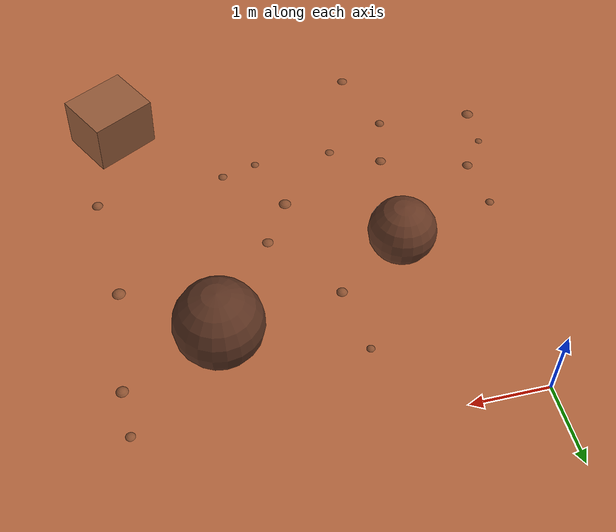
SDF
<sdf version="1.8">
 <world name="rover_world">
  <model name="ground_plane">
   <static>true</static>
   <link name="link">
    <collision name="collision">
     <geometry><plane><normal>0 0 1</normal><size>60 60</size></plane></geometry>
    </collision>
    <visual name="visual">
     <geometry><plane><normal>0 0 1</normal><size>60 60</size></plane></geometry>
     <material><ambient>0.71 0.40 0.24 1</ambient><diffuse>0.71 0.40 0.24 1</diffuse></material>
    </visual>
   </link>
  </model>
  <model name="rock_b10">
   <static>true</static>
   <pose>4.448 -5.287 0.359 -0.009 0.027 2.079</pose>
   <link name="link">
    <collision name="collision"><geometry><box><size>0.759 0.896 0.713</size></box></geometry></collision>
    <visual name="visual">
     <geometry><box><size>0.759 0.896 0.713</size></box></geometry>
     <material><ambient>0.58 0.35 0.22 1</ambient><diffuse>0.58 0.35 0.22 1</diffuse></material>
    </visual>
   </link>
  </model>
  <model name="rock_s15">
   <static>true</static>
   <pose>3.613 -1.589 0.310 0 0 0</pose>
   <link name="link">
    <collision name="collision"><geometry><sphere><radius>0.564</radius></sphere></geometry></collision>
    <visual name="visual">
     <geometry><sphere><radius>0.564</radius></sphere></geometry>
     <material><ambient>0.36 0.20 0.13 1</ambient><diffuse>0.36 0.20 0.13 1</diffuse></material>
    </visual>
   </link>
  </model>
  <model name="rock_s20">
   <static>true</static>
   <pose>1.038 -2.506 0.247 0 0 0</pose>
   <link name="link">
    <collision name="collision"><geometry><sphere><radius>0.448</radius></sphere></geometry></collision>
    <visual name="visual">
     <geometry><sphere><radius>0.448</radius></sphere></geometry>
     <material><ambient>0.40 0.22 0.14 1</ambient><diffuse>0.40 0.22 0.14 1</diffuse></material>
    </visual>
   </link>
  </model>
  <model name="bump_12">
   <static>true</static>
   <pose>2.354 -3.523 -0.063 0 0 0</pose>
   <link name="link">
    <collision name="collision"><geometry><sphere><radius>0.099</radius></sphere></geometry></collision>
    <visual name="visual">
     <geometry><sphere><radius>0.099</radius></sphere></geometry>
     <material><ambient>0.55 0.32 0.19 1</ambient><diffuse>0.55 0.32 0.19 1</diffuse></material>
    </visual>
   </link>
  </model>
  <model name="bump_26">
   <static>true</static>
   <pose>1.996 -1.910 -0.047 0 0 0</pose>
   <link name="link">
    <collision name="collision"><geometry><sphere><radius>0.081</radius></sphere></geometry></collision>
    <visual name="visual">
     <geometry><sphere><radius>0.081</radius></sphere></geometry>
     <material><ambient>0.55 0.32 0.19 1</ambient><diffuse>0.55 0.32 0.19 1</diffuse></material>
    </visual>
   </link>
  </model>
  <model name="bump_33">
   <static>true</static>
   <pose>0.659 -4.728 -0.031 0 0 0</pose>
   <link name="link">
    <collision name="collision"><geometry><sphere><radius>0.068</radius></sphere></geometry></collision>
    <visual name="visual">
     <geometry><sphere><radius>0.068</radius></sphere></geometry>
     <material><ambient>0.55 0.32 0.19 1</ambient><diffuse>0.55 0.32 0.19 1</diffuse></material>
    </visual>
   </link>
  </model>
  <model name="bump_47">
   <static>true</static>
   <pose>4.821 -4.077 -0.042 0 0 0</pose>
   <link name="link">
    <collision name="collision"><geometry><sphere><radius>0.081</radius></sphere></geometry></collision>
    <visual name="visual">
     <geometry><sphere><radius>0.081</radius></sphere></geometry>
     <material><ambient>0.55 0.32 0.19 1</ambient><diffuse>0.55 0.32 0.19 1</diffuse></material>
    </visual>
   </link>
  </model>
  <model name="bump_57">
   <static>true</static>
   <pose>1.517 -4.328 -0.078 0 0 0</pose>
   <link name="link">
    <collision name="collision"><geometry><sphere><radius>0.094</radius></sphere></geometry></collision>
    <visual name="visual">
     <geometry><sphere><radius>0.094</radius></sphere></geometry>
     <material><ambient>0.55 0.32 0.19 1</ambient><diffuse>0.55 0.32 0.19 1</diffuse></material>
    </visual>
   </link>
  </model>
  <model name="bump_84">
   <static>true</static>
   <pose>2.726 -2.916 -0.082 0 0 0</pose>
   <link name="link">
    <collision name="collision"><geometry><sphere><radius>0.105</radius></sphere></geometry></collision>
    <visual name="visual">
     <geometry><sphere><radius>0.105</radius></sphere></geometry>
     <material><ambient>0.55 0.32 0.19 1</ambient><diffuse>0.55 0.32 0.19 1</diffuse></material>
    </visual>
   </link>
  </model>
  <model name="bump_90">
   <static>true</static>
   <pose>1.884 -1.012 -0.032 0 0 0</pose>
   <link name="link">
    <collision name="collision"><geometry><sphere><radius>0.058</radius></sphere></geometry></collision>
    <visual name="visual">
     <geometry><sphere><radius>0.058</radius></sphere></geometry>
     <material><ambient>0.55 0.32 0.19 1</ambient><diffuse>0.55 0.32 0.19 1</diffuse></material>
    </visual>
   </link>
  </model>
  <model name="bump_93">
   <static>true</static>
   <pose>0.944 -5.739 -0.065 0 0 0</pose>
   <link name="link">
    <collision name="collision"><geometry><sphere><radius>0.093</radius></sphere></geometry></collision>
    <visual name="visual">
     <geometry><sphere><radius>0.093</radius></sphere></geometry>
     <material><ambient>0.55 0.32 0.19 1</ambient><diffuse>0.55 0.32 0.19 1</diffuse></material>
    </visual>
   </link>
  </model>
  <model name="bump_107">
   <static>true</static>
   <pose>-0.614 -4.052 -0.049 0 0 0</pose>
   <link name="link">
    <collision name="collision"><geometry><sphere><radius>0.065</radius></sphere></geometry></collision>
    <visual name="visual">
     <geometry><sphere><radius>0.065</radius></sphere></geometry>
     <material><ambient>0.55 0.32 0.19 1</ambient><diffuse>0.55 0.32 0.19 1</diffuse></material>
    </visual>
   </link>
  </model>
  <model name="bump_157">
   <static>true</static>
   <pose>0.865 -3.994 -0.048 0 0 0</pose>
   <link name="link">
    <collision name="collision"><geometry><sphere><radius>0.083</radius></sphere></geometry></collision>
    <visual name="visual">
     <geometry><sphere><radius>0.083</radius></sphere></geometry>
     <material><ambient>0.55 0.32 0.19 1</ambient><diffuse>0.55 0.32 0.19 1</diffuse></material>
    </visual>
   </link>
  </model>
  <model name="bump_164">
   <static>true</static>
   <pose>2.594 -4.338 -0.043 0 0 0</pose>
   <link name="link">
    <collision name="collision"><geometry><sphere><radius>0.066</radius></sphere></geometry></collision>
    <visual name="visual">
     <geometry><sphere><radius>0.066</radius></sphere></geometry>
     <material><ambient>0.55 0.32 0.19 1</ambient><diffuse>0.55 0.32 0.19 1</diffuse></material>
    </visual>
   </link>
  </model>
  <model name="bump_170">
   <static>true</static>
   <pose>3.075 -4.214 -0.054 0 0 0</pose>
   <link name="link">
    <collision name="collision"><geometry><sphere><radius>0.076</radius></sphere></geometry></collision>
    <visual name="visual">
     <geometry><sphere><radius>0.076</radius></sphere></geometry>
     <material><ambient>0.55 0.32 0.19 1</ambient><diffuse>0.55 0.32 0.19 1</diffuse></material>
    </visual>
   </link>
  </model>
  <model name="bump_171">
   <static>true</static>
   <pose>4.726 -2.538 -0.076 0 0 0</pose>
   <link name="link">
    <collision name="collision"><geometry><sphere><radius>0.109</radius></sphere></geometry></collision>
    <visual name="visual">
     <geometry><sphere><radius>0.109</radius></sphere></geometry>
     <material><ambient>0.55 0.32 0.19 1</ambient><diffuse>0.55 0.32 0.19 1</diffuse></material>
    </visual>
   </link>
  </model>
  <model name="bump_196">
   <static>true</static>
   <pose>-0.294 -3.632 -0.054 0 0 0</pose>
   <link name="link">
    <collision name="collision"><geometry><sphere><radius>0.085</radius></sphere></geometry></collision>
    <visual name="visual">
     <geometry><sphere><radius>0.085</radius></sphere></geometry>
     <material><ambient>0.55 0.32 0.19 1</ambient><diffuse>0.55 0.32 0.19 1</diffuse></material>
    </visual>
   </link>
  </model>
  <model name="bump_217">
   <static>true</static>
   <pose>4.846 -0.511 -0.063 0 0 0</pose>
   <link name="link">
    <collision name="collision"><geometry><sphere><radius>0.082</radius></sphere></geometry></collision>
    <visual name="visual">
     <geometry><sphere><radius>0.082</radius></sphere></geometry>
     <material><ambient>0.55 0.32 0.19 1</ambient><diffuse>0.55 0.32 0.19 1</diffuse></material>
    </visual>
   </link>
  </model>
  <model name="bump_227">
   <static>true</static>
   <pose>-0.649 -4.616 -0.063 0 0 0</pose>
   <link name="link">
    <collision name="collision"><geometry><sphere><radius>0.099</radius></sphere></geometry></collision>
    <visual name="visual">
     <geometry><sphere><radius>0.099</radius></sphere></geometry>
     <material><ambient>0.55 0.32 0.19 1</ambient><diffuse>0.55 0.32 0.19 1</diffuse></material>
    </visual>
   </link>
  </model>
  <model name="bump_228">
   <static>true</static>
   <pose>-0.350 -2.908 -0.040 0 0 0</pose>
   <link name="link">
    <collision name="collision"><geometry><sphere><radius>0.067</radius></sphere></geometry></collision>
    <visual name="visual">
     <geometry><sphere><radius>0.067</radius></sphere></geometry>
     <material><ambient>0.55 0.32 0.19 1</ambient><diffuse>0.55 0.32 0.19 1</diffuse></material>
    </visual>
   </link>
  </model>
  <model name="bump_249">
   <static>true</static>
   <pose>4.864 -1.115 -0.054 0 0 0</pose>
   <link name="link">
    <collision name="collision"><geometry><sphere><radius>0.089</radius></sphere></geometry></collision>
    <visual name="visual">
     <geometry><sphere><radius>0.089</radius></sphere></geometry>
     <material><ambient>0.55 0.32 0.19 1</ambient><diffuse>0.55 0.32 0.19 1</diffuse></material>
    </visual>
   </link>
  </model>
 </world>
</sdf>
